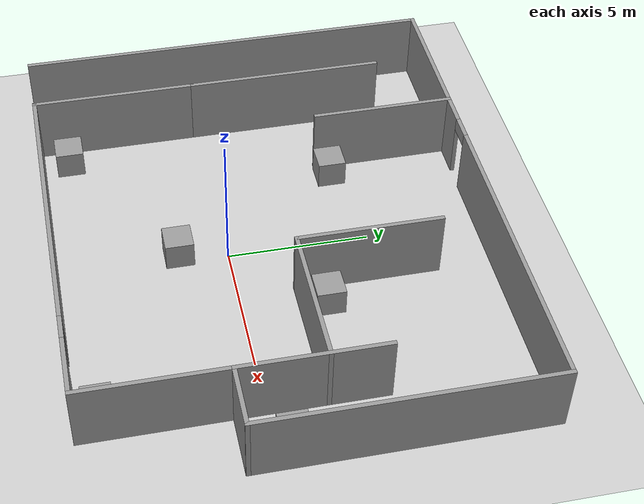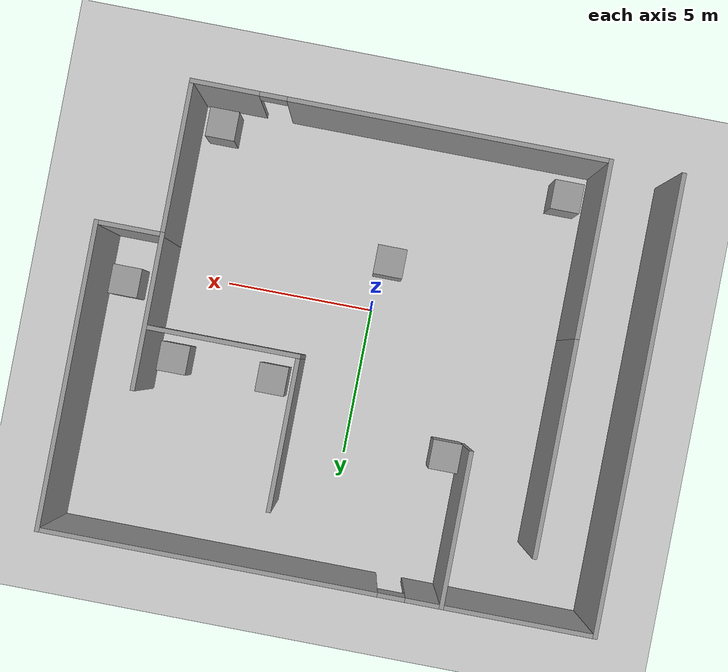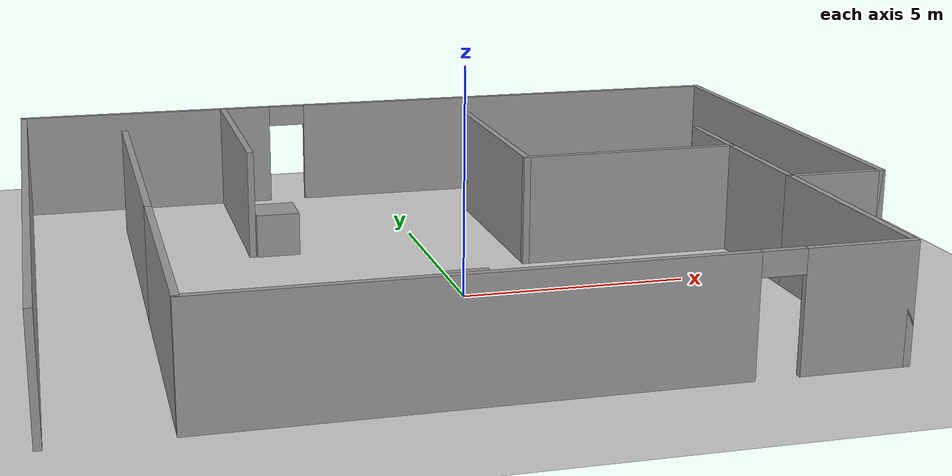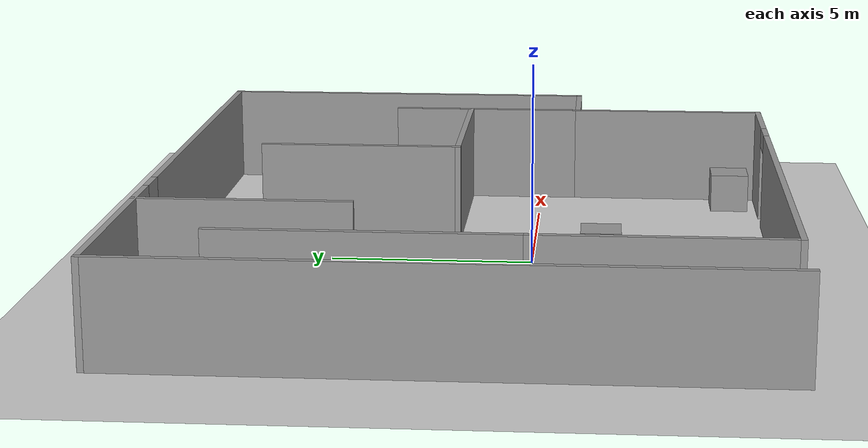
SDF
<sdf version="1.7">
 <world name="default">
  <light name="sun" type="directional">
   <pose>0 0 10 0 -0 0</pose>
   <diffuse>0.8 0.8 0.8 1</diffuse>
   <specular>0.2 0.2 0.2 1</specular>
   <attenuation>
    <range>1000</range>
    <constant>0.9</constant>
    <linear>0.01</linear>
    <quadratic>0.001</quadratic>
   </attenuation>
   <direction>-0.5 0.1 -0.9</direction>
   <spot><inner_angle>0</inner_angle><outer_angle>0</outer_angle><falloff>0</falloff></spot>
  </light>
  <model name="ground_plane">
   <static>1</static>
   <link name="link">
    <collision name="collision">
     <geometry><plane><normal>0 0 1</normal><size>100 100</size></plane></geometry>
     <surface>
      <contact><collide_bitmask>65535</collide_bitmask></contact>
      <friction><ode><mu>100</mu><mu2>50</mu2></ode></friction>
     </surface>
    </collision>
    <visual name="visual">
     <cast_shadows>0</cast_shadows>
     <geometry><plane><normal>0 0 1</normal><size>100 100</size></plane></geometry>
     <material>
      <script><uri>file://media/materials/scripts/gazebo.material</uri><name>Gazebo/Grey</name></script>
     </material>
    </visual>
   </link>
  </model>
  <gravity>0 0 -9.8</gravity>
  <magnetic_field>6e-06 2.3e-05 -4.2e-05</magnetic_field>
  <atmosphere type="adiabatic"/>
  <physics type="ode">
   <max_step_size>0.001</max_step_size>
   <real_time_factor>1</real_time_factor>
   <real_time_update_rate>1000</real_time_update_rate>
  </physics>
  <scene><ambient>0.4 0.4 0.4 1</ambient><background>0.7 0.7 0.7 1</background><shadows>1</shadows></scene>
  <audio><device>default</device></audio>
  <spherical_coordinates>
   <surface_model>EARTH_WGS84</surface_model>
   <latitude_deg>0</latitude_deg>
   <longitude_deg>0</longitude_deg>
   <elevation>0</elevation>
   <heading_deg>0</heading_deg>
  </spherical_coordinates>
  <model name="임시틀">
   <pose>0.0745 1.5 0 0 -0 0</pose>
   <link name="Wall_13">
    <collision name="Wall_13_Collision">
     <geometry><box><size>10.15 0.15 2.5</size></box></geometry>
     <pose>0 0 1.25 0 -0 0</pose>
    </collision>
    <visual name="Wall_13_Visual">
     <pose>0 0 1.25 0 -0 0</pose>
     <geometry><box><size>10.15 0.15 2.5</size></box></geometry>
     <material>
      <script><uri>file://media/materials/scripts/gazebo.material</uri><name>Gazebo/Grey</name></script>
      <ambient>1 1 1 1</ambient>
     </material>
     <meta><layer>0</layer></meta>
    </visual>
    <pose>9.0745 2.5 0 0 -0 -1.5708</pose>
   </link>
   <link name="Wall_15">
    <collision name="Wall_15_Collision">
     <geometry><box><size>15.15 0.15 2.5</size></box></geometry>
     <pose>0 0 1.25 0 -0 0</pose>
    </collision>
    <visual name="Wall_15_Visual">
     <pose>0 0 1.25 0 -0 0</pose>
     <geometry><box><size>15.15 0.15 2.5</size></box></geometry>
     <material>
      <script><uri>file://media/materials/scripts/gazebo.material</uri><name>Gazebo/Grey</name></script>
      <ambient>1 1 1 1</ambient>
     </material>
     <meta><layer>0</layer></meta>
    </visual>
    <pose>-9.0745 0 0 0 -0 -1.5708</pose>
   </link>
   <link name="Wall_17">
    <collision name="Wall_17_Collision">
     <geometry><box><size>5.15 0.15 2.5</size></box></geometry>
     <pose>0 0 1.25 0 -0 0</pose>
    </collision>
    <visual name="Wall_17_Visual">
     <pose>0 0 1.25 0 -0 0</pose>
     <geometry><box><size>5.15 0.15 2.5</size></box></geometry>
     <material>
      <script><uri>file://media/materials/scripts/gazebo.material</uri><name>Gazebo/Grey</name></script>
      <ambient>1 1 1 1</ambient>
     </material>
     <meta><layer>0</layer></meta>
    </visual>
    <pose>6.9255 0 0 0 -0 1.5708</pose>
   </link>
   <link name="Wall_20">
    <collision name="Wall_20_Collision">
     <geometry><box><size>5.15 0.15 2.5</size></box></geometry>
     <pose>0 0 1.25 0 -0 0</pose>
    </collision>
    <visual name="Wall_20_Visual">
     <pose>0 0 1.25 0 -0 0</pose>
     <geometry><box><size>5.15 0.15 2.5</size></box></geometry>
     <material>
      <script><uri>file://media/materials/scripts/gazebo.material</uri><name>Gazebo/Grey</name></script>
      <ambient>1 1 1 1</ambient>
     </material>
     <meta><layer>0</layer></meta>
    </visual>
    <pose>4.4255 0.5 0 0 -0 3.14159</pose>
   </link>
   <link name="Wall_22">
    <collision name="Wall_22_Collision">
     <geometry><box><size>5.15 0.15 2.5</size></box></geometry>
     <pose>0 0 1.25 0 -0 0</pose>
    </collision>
    <visual name="Wall_22_Visual">
     <pose>0 0 1.25 0 -0 0</pose>
     <geometry><box><size>5.15 0.15 2.5</size></box></geometry>
     <material>
      <script><uri>file://media/materials/scripts/gazebo.material</uri><name>Gazebo/Grey</name></script>
      <ambient>1 1 1 1</ambient>
     </material>
     <meta><layer>0</layer></meta>
    </visual>
    <pose>1.9255 3 0 0 -0 1.5708</pose>
   </link>
   <link name="Wall_25">
    <collision name="Wall_25_Collision">
     <geometry><box><size>7.15 0.15 2.5</size></box></geometry>
     <pose>0 0 1.25 0 -0 0</pose>
    </collision>
    <visual name="Wall_25_Visual">
     <pose>0 0 1.25 0 -0 0</pose>
     <geometry><box><size>7.15 0.15 2.5</size></box></geometry>
     <material>
      <script><uri>file://media/materials/scripts/gazebo.material</uri><name>Gazebo/Grey</name></script>
      <ambient>1 1 1 1</ambient>
     </material>
     <meta><layer>0</layer></meta>
    </visual>
    <pose>-6.70533 1.86139 0 0 -0 -1.5708</pose>
   </link>
   <link name="Wall_27">
    <collision name="Wall_27_Collision">
     <geometry><box><size>5.15 0.15 2.5</size></box></geometry>
     <pose>0 0 1.25 0 -0 0</pose>
    </collision>
    <visual name="Wall_27_Visual">
     <pose>0 0 1.25 0 -0 0</pose>
     <geometry><box><size>5.15 0.15 2.5</size></box></geometry>
     <material>
      <script><uri>file://media/materials/scripts/gazebo.material</uri><name>Gazebo/Grey</name></script>
      <ambient>1 1 1 1</ambient>
     </material>
     <meta><layer>0</layer></meta>
    </visual>
    <pose>-4.0745 5 0 0 -0 -1.5708</pose>
   </link>
   <link name="Wall_29">
    <collision name="Wall_29_Collision">
     <geometry><box><size>6.01139 0.15 2.5</size></box></geometry>
     <pose>0 0 1.25 0 -0 0</pose>
    </collision>
    <visual name="Wall_29_Visual">
     <pose>0 0 1.25 0 -0 0</pose>
     <geometry><box><size>6.01139 0.15 2.5</size></box></geometry>
     <material>
      <script><uri>file://media/materials/scripts/gazebo.material</uri><name>Gazebo/Grey</name></script>
      <ambient>1 1 1 1</ambient>
     </material>
     <meta><layer>0</layer></meta>
    </visual>
    <pose>-6.70542 -4.5693 0 0 -0 -1.57082</pose>
   </link>
   <link name="Wall_30">
    <pose>0.11 -7.5 0 0 -0 0</pose>
    <visual name="Wall_30_Visual_0">
     <pose>-1.58737 0 1.25 0 -0 0</pose>
     <geometry><box><size>10.6063 0.15 2.5</size></box></geometry>
     <material>
      <script><uri>file://media/materials/scripts/gazebo.material</uri><name>Gazebo/Grey</name></script>
      <ambient>1 1 1 1</ambient>
     </material>
     <meta><layer>0</layer></meta>
    </visual>
    <collision name="Wall_30_Collision_0">
     <geometry><box><size>10.6063 0.15 2.5</size></box></geometry>
     <pose>-1.58737 0 1.25 0 -0 0</pose>
    </collision>
    <visual name="Wall_30_Visual_1">
     <pose>5.75313 0 1.25 0 -0 0</pose>
     <geometry><box><size>2.27474 0.15 2.5</size></box></geometry>
     <material>
      <script><uri>file://media/materials/scripts/gazebo.material</uri><name>Gazebo/Grey</name></script>
      <ambient>1 1 1 1</ambient>
     </material>
     <meta><layer>0</layer></meta>
    </visual>
    <collision name="Wall_30_Collision_1">
     <geometry><box><size>2.27474 0.15 2.5</size></box></geometry>
     <pose>5.75313 0 1.25 0 -0 0</pose>
    </collision>
    <visual name="Wall_30_Visual_2">
     <pose>4.16576 0 2.25 0 -0 0</pose>
     <geometry><box><size>0.9 0.15 0.5</size></box></geometry>
     <material>
      <script><uri>file://media/materials/scripts/gazebo.material</uri><name>Gazebo/Grey</name></script>
      <ambient>1 1 1 1</ambient>
     </material>
     <meta><layer>0</layer></meta>
    </visual>
    <collision name="Wall_30_Collision_2">
     <geometry><box><size>0.9 0.15 0.5</size></box></geometry>
     <pose>4.16576 0 2.25 0 -0 0</pose>
    </collision>
   </link>
   <link name="Wall_31">
    <collision name="Wall_31_Collision">
     <geometry><box><size>5.15 0.15 2.5</size></box></geometry>
     <pose>0 0 1.25 0 -0 0</pose>
    </collision>
    <visual name="Wall_31_Visual">
     <pose>0 0 1.25 0 -0 0</pose>
     <geometry><box><size>5.15 0.15 2.5</size></box></geometry>
     <material>
      <script><uri>file://media/materials/scripts/gazebo.material</uri><name>Gazebo/Grey</name></script>
      <ambient>1 1 1 1</ambient>
     </material>
     <meta><layer>0</layer></meta>
    </visual>
    <pose>6.9255 -5 0 0 -0 1.5708</pose>
   </link>
   <link name="Wall_40">
    <collision name="Wall_40_Collision">
     <geometry><box><size>2.299 0.15 2.5</size></box></geometry>
     <pose>0 0 1.25 0 -0 0</pose>
    </collision>
    <visual name="Wall_40_Visual">
     <pose>0 0 1.25 0 -0 0</pose>
     <geometry><box><size>2.299 0.15 2.5</size></box></geometry>
     <material>
      <script><uri>file://media/materials/scripts/gazebo.material</uri><name>Gazebo/Grey</name></script>
      <ambient>1 1 1 1</ambient>
     </material>
     <meta><layer>0</layer></meta>
    </visual>
    <pose>8 -2.5 0 0 -0 0</pose>
   </link>
   <link name="Wall_9">
    <pose>-0.0745 7.5 0 0 -0 3.14159</pose>
    <visual name="Wall_9_Visual_0">
     <pose>-3.58436 0 1.25 0 -0 0</pose>
     <geometry><box><size>10.9813 0.15 2.5</size></box></geometry>
     <material>
      <script><uri>file://media/materials/scripts/gazebo.material</uri><name>Gazebo/Grey</name></script>
      <ambient>1 1 1 1</ambient>
     </material>
     <meta><layer>0</layer></meta>
    </visual>
    <collision name="Wall_9_Collision_0">
     <geometry><box><size>10.9813 0.15 2.5</size></box></geometry>
     <pose>-3.58436 0 1.25 0 -0 0</pose>
    </collision>
    <visual name="Wall_9_Visual_1">
     <pose>5.94064 0 1.25 0 -0 0</pose>
     <geometry><box><size>6.26872 0.15 2.5</size></box></geometry>
     <material>
      <script><uri>file://media/materials/scripts/gazebo.material</uri><name>Gazebo/Grey</name></script>
      <ambient>1 1 1 1</ambient>
     </material>
     <meta><layer>0</layer></meta>
    </visual>
    <collision name="Wall_9_Collision_1">
     <geometry><box><size>6.26872 0.15 2.5</size></box></geometry>
     <pose>5.94064 0 1.25 0 -0 0</pose>
    </collision>
    <visual name="Wall_9_Visual_2">
     <pose>2.35628 0 2.25 0 -0 0</pose>
     <geometry><box><size>0.9 0.15 0.5</size></box></geometry>
     <material>
      <script><uri>file://media/materials/scripts/gazebo.material</uri><name>Gazebo/Grey</name></script>
      <ambient>1 1 1 1</ambient>
     </material>
     <meta><layer>0</layer></meta>
    </visual>
    <collision name="Wall_9_Collision_2">
     <geometry><box><size>0.9 0.15 0.5</size></box></geometry>
     <pose>2.35628 0 2.25 0 -0 0</pose>
    </collision>
   </link>
   <static>1</static>
  </model>
  <model name="unit_box">
   <pose>-3.39723 4.39609 0.5 0 -0 0</pose>
   <link name="link">
    <inertial>
     <mass>1</mass>
     <inertia>
      <ixx>0.166667</ixx>
      <ixy>0</ixy>
      <ixz>0</ixz>
      <iyy>0.166667</iyy>
      <iyz>0</iyz>
      <izz>0.166667</izz>
     </inertia>
    </inertial>
    <collision name="collision"><geometry><box><size>1 1 1</size></box></geometry></collision>
    <visual name="visual">
     <geometry><box><size>1 1 1</size></box></geometry>
     <material>
      <script><name>Gazebo/Grey</name><uri>file://media/materials/scripts/gazebo.material</uri></script>
     </material>
    </visual>
   </link>
  </model>
  <model name="unit_box_0">
   <pose>-5.77796 -4.9865 0.5 0 -0 0</pose>
   <link name="link">
    <inertial>
     <mass>1</mass>
     <inertia>
      <ixx>0.166667</ixx>
      <ixy>0</ixy>
      <ixz>0</ixz>
      <iyy>0.166667</iyy>
      <iyz>0</iyz>
      <izz>0.166667</izz>
     </inertia>
    </inertial>
    <collision name="collision"><geometry><box><size>1 1 1</size></box></geometry></collision>
    <visual name="visual">
     <geometry><box><size>1 1 1</size></box></geometry>
     <material>
      <script><name>Gazebo/Grey</name><uri>file://media/materials/scripts/gazebo.material</uri></script>
     </material>
    </visual>
   </link>
  </model>
  <model name="unit_box_1">
   <pose>-0.328712 -1.70513 0.5 0 -0 0</pose>
   <link name="link">
    <inertial>
     <mass>1</mass>
     <inertia>
      <ixx>0.166667</ixx>
      <ixy>0</ixy>
      <ixz>0</ixz>
      <iyy>0.166667</iyy>
      <iyz>0</iyz>
      <izz>0.166667</izz>
     </inertia>
    </inertial>
    <collision name="collision"><geometry><box><size>1 1 1</size></box></geometry></collision>
    <visual name="visual">
     <geometry><box><size>1 1 1</size></box></geometry>
     <material>
      <script><name>Gazebo/Grey</name><uri>file://media/materials/scripts/gazebo.material</uri></script>
     </material>
    </visual>
   </link>
  </model>
  <model name="unit_box_2">
   <pose>6.10325 -5.19264 0.5 0 -0 0</pose>
   <link name="link">
    <inertial>
     <mass>1</mass>
     <inertia>
      <ixx>0.166667</ixx>
      <ixy>0</ixy>
      <ixz>0</ixz>
      <iyy>0.166667</iyy>
      <iyz>0</iyz>
      <izz>0.166667</izz>
     </inertia>
    </inertial>
    <collision name="collision"><geometry><box><size>1 1 1</size></box></geometry></collision>
    <visual name="visual">
     <geometry><box><size>1 1 1</size></box></geometry>
     <material>
      <script><name>Gazebo/Grey</name><uri>file://media/materials/scripts/gazebo.material</uri></script>
     </material>
    </visual>
   </link>
  </model>
  <model name="unit_box_3">
   <pose>2.83982 2.94458 0.5 0 -0 0</pose>
   <link name="link">
    <inertial>
     <mass>1</mass>
     <inertia>
      <ixx>0.166667</ixx>
      <ixy>0</ixy>
      <ixz>0</ixz>
      <iyy>0.166667</iyy>
      <iyz>0</iyz>
      <izz>0.166667</izz>
     </inertia>
    </inertial>
    <collision name="collision"><geometry><box><size>1 1 1</size></box></geometry></collision>
    <visual name="visual">
     <geometry><box><size>1 1 1</size></box></geometry>
     <material>
      <script><name>Gazebo/Grey</name><uri>file://media/materials/scripts/gazebo.material</uri></script>
     </material>
    </visual>
   </link>
  </model>
  <model name="unit_box_4">
   <pose>6.23907 2.867 0.5 0 -0 0</pose>
   <link name="link">
    <inertial>
     <mass>1</mass>
     <inertia>
      <ixx>0.166667</ixx>
      <ixy>0</ixy>
      <ixz>0</ixz>
      <iyy>0.166667</iyy>
      <iyz>0</iyz>
      <izz>0.166667</izz>
     </inertia>
    </inertial>
    <collision name="collision"><geometry><box><size>1 1 1</size></box></geometry></collision>
    <visual name="visual">
     <geometry><box><size>1 1 1</size></box></geometry>
     <material>
      <script><name>Gazebo/Grey</name><uri>file://media/materials/scripts/gazebo.material</uri></script>
     </material>
    </visual>
   </link>
  </model>
  <model name="unit_box_5">
   <pose>8.32698 0.622256 0.5 0 -0 0</pose>
   <link name="link">
    <inertial>
     <mass>1</mass>
     <inertia>
      <ixx>0.166667</ixx>
      <ixy>0</ixy>
      <ixz>0</ixz>
      <iyy>0.166667</iyy>
      <iyz>0</iyz>
      <izz>0.166667</izz>
     </inertia>
    </inertial>
    <collision name="collision"><geometry><box><size>1 1 1</size></box></geometry></collision>
    <visual name="visual">
     <geometry><box><size>1 1 1</size></box></geometry>
     <material>
      <script><name>Gazebo/Grey</name><uri>file://media/materials/scripts/gazebo.material</uri></script>
     </material>
    </visual>
   </link>
  </model>
 </world>
</sdf>
